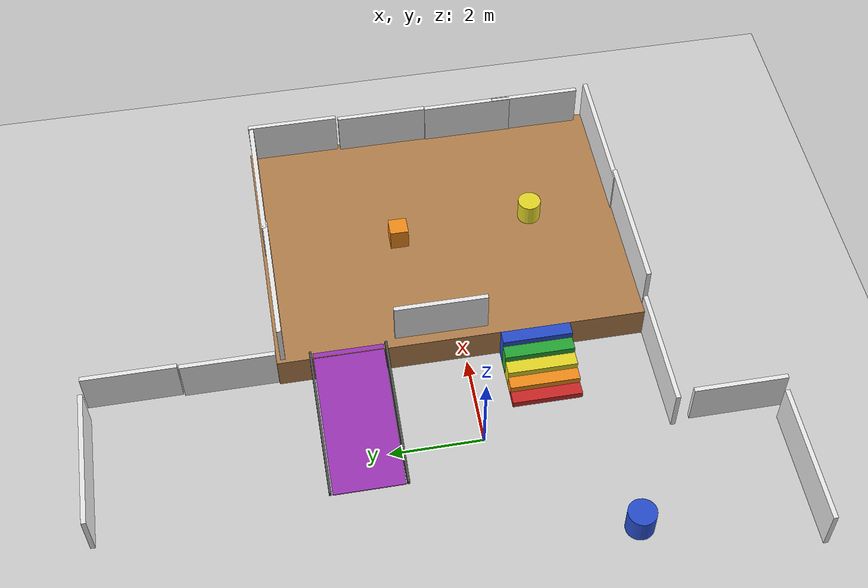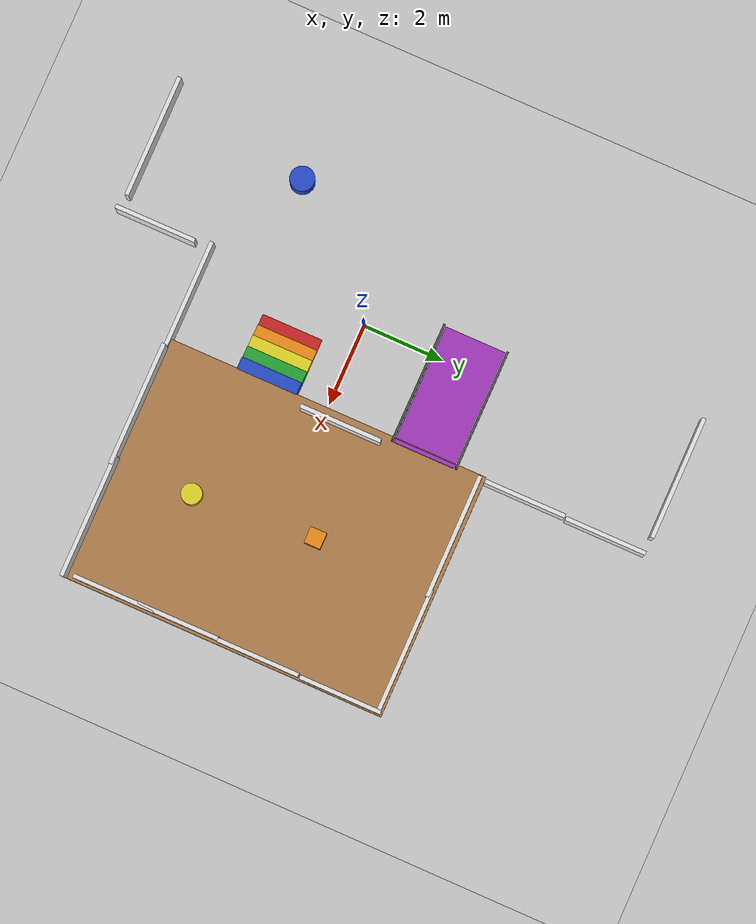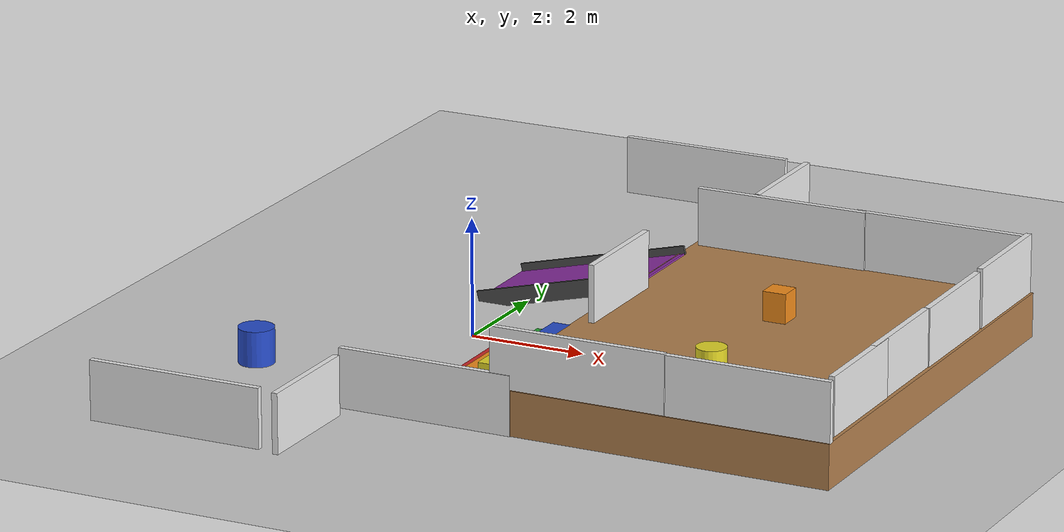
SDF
<sdf version="1.7">
 <world name="two_floor_test">
  <model name="ground_plane">
   <static>1</static>
   <link name="link">
    <collision name="collision">
     <geometry><plane><normal>0 0 1</normal><size>20 20</size></plane></geometry>
     <surface><friction><ode><mu>100</mu><mu2>50</mu2></ode></friction></surface>
    </collision>
    <visual name="visual">
     <cast_shadows>0</cast_shadows>
     <geometry><plane><normal>0 0 1</normal><size>20 20</size></plane></geometry>
     <material>
      <script><uri>file://media/materials/scripts/gazebo.material</uri><name>Gazebo/Grey</name></script>
     </material>
    </visual>
   </link>
  </model>
  <model name="second_floor">
   <static>1</static>
   <pose>5.12928 0.016362 0.375 0 -0 0</pose>
   <link name="link">
    <collision name="collision">
     <geometry><box><size>6 8 0.75</size></box></geometry>
     <surface><friction><ode><mu>100</mu><mu2>50</mu2></ode></friction></surface>
    </collision>
    <visual name="visual">
     <geometry><box><size>6 8 0.75</size></box></geometry>
     <material>
      <script><uri>file://media/materials/scripts/gazebo.material</uri><name>Gazebo/Wood</name></script>
     </material>
    </visual>
   </link>
  </model>
  <model name="stair_step_1">
   <static>1</static>
   <pose>0.851875 -1.5007 0.075 0 -0 0</pose>
   <link name="link">
    <collision name="collision">
     <geometry><box><size>0.3 1.5 0.15</size></box></geometry>
     <surface><friction><ode><mu>100</mu><mu2>50</mu2></ode></friction></surface>
    </collision>
    <visual name="visual">
     <geometry><box><size>0.3 1.5 0.15</size></box></geometry>
     <material>
      <script><uri>file://media/materials/scripts/gazebo.material</uri><name>Gazebo/Red</name></script>
     </material>
    </visual>
   </link>
  </model>
  <model name="stair_step_2">
   <static>1</static>
   <pose>1.13089 -1.50072 0.15 0 -0 0</pose>
   <link name="link">
    <collision name="collision">
     <geometry><box><size>0.3 1.5 0.3</size></box></geometry>
     <surface><friction><ode><mu>100</mu><mu2>50</mu2></ode></friction></surface>
    </collision>
    <visual name="visual">
     <geometry><box><size>0.3 1.5 0.3</size></box></geometry>
     <material>
      <script><uri>file://media/materials/scripts/gazebo.material</uri><name>Gazebo/Orange</name></script>
     </material>
    </visual>
   </link>
  </model>
  <model name="stair_step_3">
   <static>1</static>
   <pose>1.40821 -1.49927 0.225 0 -0 0</pose>
   <link name="link">
    <collision name="collision">
     <geometry><box><size>0.3 1.5 0.45</size></box></geometry>
     <surface><friction><ode><mu>100</mu><mu2>50</mu2></ode></friction></surface>
    </collision>
    <visual name="visual">
     <geometry><box><size>0.3 1.5 0.45</size></box></geometry>
     <material>
      <script><uri>file://media/materials/scripts/gazebo.material</uri><name>Gazebo/Yellow</name></script>
     </material>
    </visual>
   </link>
  </model>
  <model name="stair_step_4">
   <static>1</static>
   <pose>1.70313 -1.49583 0.3 0 -0 0</pose>
   <link name="link">
    <collision name="collision">
     <geometry><box><size>0.3 1.5 0.6</size></box></geometry>
     <surface><friction><ode><mu>100</mu><mu2>50</mu2></ode></friction></surface>
    </collision>
    <visual name="visual">
     <geometry><box><size>0.3 1.5 0.6</size></box></geometry>
     <material>
      <script><uri>file://media/materials/scripts/gazebo.material</uri><name>Gazebo/Green</name></script>
     </material>
    </visual>
   </link>
  </model>
  <model name="stair_step_5">
   <static>1</static>
   <pose>1.99464 -1.5 0.375 0 -0 0</pose>
   <link name="link">
    <collision name="collision">
     <geometry><box><size>0.3 1.5 0.75</size></box></geometry>
     <surface><friction><ode><mu>100</mu><mu2>50</mu2></ode></friction></surface>
    </collision>
    <visual name="visual">
     <geometry><box><size>0.3 1.5 0.75</size></box></geometry>
     <material>
      <script><uri>file://media/materials/scripts/gazebo.material</uri><name>Gazebo/Blue</name></script>
     </material>
    </visual>
   </link>
  </model>
  <model name="ramp">
   <static>1</static>
   <pose>0.75 2.5 0.375 0 -0.245 0</pose>
   <link name="link">
    <collision name="collision">
     <geometry><box><size>3.09 1.5 0.05</size></box></geometry>
     <surface><friction><ode><mu>100</mu><mu2>50</mu2></ode></friction></surface>
    </collision>
    <visual name="visual">
     <geometry><box><size>3.09 1.5 0.05</size></box></geometry>
     <material>
      <script><uri>file://media/materials/scripts/gazebo.material</uri><name>Gazebo/Purple</name></script>
     </material>
    </visual>
   </link>
  </model>
  <model name="ramp_wall_left">
   <static>1</static>
   <pose>0.75 1.7 0.375 0 -0.245 0</pose>
   <link name="link">
    <collision name="collision"><geometry><box><size>3.09 0.05 0.3</size></box></geometry></collision>
    <visual name="visual">
     <geometry><box><size>3.09 0.05 0.3</size></box></geometry>
     <material>
      <script><uri>file://media/materials/scripts/gazebo.material</uri><name>Gazebo/DarkGrey</name></script>
     </material>
    </visual>
   </link>
  </model>
  <model name="ramp_wall_right">
   <static>1</static>
   <pose>0.75 3.3 0.375 0 -0.245 0</pose>
   <link name="link">
    <collision name="collision"><geometry><box><size>3.09 0.05 0.3</size></box></geometry></collision>
    <visual name="visual">
     <geometry><box><size>3.09 0.05 0.3</size></box></geometry>
     <material>
      <script><uri>file://media/materials/scripts/gazebo.material</uri><name>Gazebo/DarkGrey</name></script>
     </material>
    </visual>
   </link>
  </model>
  <model name="obstacle_cylinder">
   <static>1</static>
   <pose>-2.50786 -2.66536 0.3 0 -0 0</pose>
   <link name="link">
    <collision name="collision">
     <geometry><cylinder><radius>0.3</radius><length>0.6</length></cylinder></geometry>
    </collision>
    <visual name="visual">
     <geometry><cylinder><radius>0.3</radius><length>0.6</length></cylinder></geometry>
     <material>
      <script><uri>file://media/materials/scripts/gazebo.material</uri><name>Gazebo/Blue</name></script>
     </material>
    </visual>
   </link>
  </model>
  <model name="obstacle_2f_box">
   <static>1</static>
   <pose>5 1 1 0 -0 0</pose>
   <link name="link">
    <collision name="collision"><geometry><box><size>0.4 0.4 0.5</size></box></geometry></collision>
    <visual name="visual">
     <geometry><box><size>0.4 0.4 0.5</size></box></geometry>
     <material>
      <script><uri>file://media/materials/scripts/gazebo.material</uri><name>Gazebo/Orange</name></script>
     </material>
    </visual>
   </link>
  </model>
  <model name="obstacle_2f_cylinder">
   <static>1</static>
   <pose>5.22236 -1.99827 1 0 -0 0</pose>
   <link name="link">
    <collision name="collision">
     <geometry><cylinder><radius>0.25</radius><length>0.5</length></cylinder></geometry>
    </collision>
    <visual name="visual">
     <geometry><cylinder><radius>0.25</radius><length>0.5</length></cylinder></geometry>
     <material>
      <script><uri>file://media/materials/scripts/gazebo.material</uri><name>Gazebo/Yellow</name></script>
     </material>
    </visual>
   </link>
  </model>
  <model name="wall_stairs">
   <static>1</static>
   <pose>1.21103 -3.9499 0.5 0 -0 0</pose>
   <link name="link">
    <collision name="collision"><geometry><box><size>3 0.1 1</size></box></geometry></collision>
    <visual name="visual">
     <geometry><box><size>3 0.1 1</size></box></geometry>
     <material>
      <script><uri>file://media/materials/scripts/gazebo.material</uri><name>Gazebo/White</name></script>
     </material>
    </visual>
   </link>
  </model>
  <model name="wall_ramp">
   <static>1</static>
   <pose>2.22962 5.02219 0.5 0 -0 0</pose>
   <link name="link">
    <collision name="collision"><geometry><box><size>0.1 2 1</size></box></geometry></collision>
    <visual name="visual">
     <geometry><box><size>0.1 2 1</size></box></geometry>
     <material>
      <script><uri>file://media/materials/scripts/gazebo.material</uri><name>Gazebo/White</name></script>
     </material>
    </visual>
   </link>
  </model>
  <model name="wall_ramp_clone">
   <static>1</static>
   <pose>2.26766 7.05725 0.5 0 -0 0</pose>
   <link name="link">
    <collision name="collision"><geometry><box><size>0.1 2 1</size></box></geometry></collision>
    <visual name="visual">
     <geometry><box><size>0.1 2 1</size></box></geometry>
     <material>
      <script><uri>file://media/materials/scripts/gazebo.material</uri><name>Gazebo/White</name></script>
     </material>
    </visual>
   </link>
  </model>
  <model name="wall_stairs_clone">
   <static>1</static>
   <pose>-1.9839 -6.18957 0.5 0 -0 0</pose>
   <link name="link">
    <collision name="collision"><geometry><box><size>3 0.1 1</size></box></geometry></collision>
    <visual name="visual">
     <geometry><box><size>3 0.1 1</size></box></geometry>
     <material>
      <script><uri>file://media/materials/scripts/gazebo.material</uri><name>Gazebo/White</name></script>
     </material>
    </visual>
   </link>
  </model>
  <model name="wall_stairs_clone_1">
   <static>1</static>
   <pose>0.380784 8.04789 0.5 0 -0 0</pose>
   <link name="link">
    <collision name="collision"><geometry><box><size>3 0.1 1</size></box></geometry></collision>
    <visual name="visual">
     <geometry><box><size>3 0.1 1</size></box></geometry>
     <material>
      <script><uri>file://media/materials/scripts/gazebo.material</uri><name>Gazebo/White</name></script>
     </material>
    </visual>
   </link>
  </model>
  <model name="wall_ramp_clone_2_clone_0">
   <static>1</static>
   <pose>-0.152199 -5.31861 0.5 0 -0 0</pose>
   <link name="link">
    <collision name="collision"><geometry><box><size>0.1 2 1</size></box></geometry></collision>
    <visual name="visual">
     <geometry><box><size>0.1 2 1</size></box></geometry>
     <material>
      <script><uri>file://media/materials/scripts/gazebo.material</uri><name>Gazebo/White</name></script>
     </material>
    </visual>
   </link>
  </model>
  <model name="wall_ramp_clone_0">
   <static>1</static>
   <pose>8.04575 2.97356 1.26028 0 -0 0</pose>
   <link name="link">
    <collision name="collision"><geometry><box><size>0.1 2 1</size></box></geometry></collision>
    <visual name="visual">
     <geometry><box><size>0.1 2 1</size></box></geometry>
     <material>
      <script><uri>file://media/materials/scripts/gazebo.material</uri><name>Gazebo/White</name></script>
     </material>
    </visual>
   </link>
  </model>
  <model name="wall_ramp_clone_0_clone">
   <static>1</static>
   <pose>8.0258 0.921 1.2226 0 -0 0</pose>
   <link name="link">
    <collision name="collision"><geometry><box><size>0.1 2 1</size></box></geometry></collision>
    <visual name="visual">
     <geometry><box><size>0.1 2 1</size></box></geometry>
     <material>
      <script><uri>file://media/materials/scripts/gazebo.material</uri><name>Gazebo/White</name></script>
     </material>
    </visual>
   </link>
  </model>
  <model name="wall_ramp_clone_0_clone_0">
   <static>1</static>
   <pose>8.0082 -1.08373 1.2226 0 -0 0</pose>
   <link name="link">
    <collision name="collision"><geometry><box><size>0.1 2 1</size></box></geometry></collision>
    <visual name="visual">
     <geometry><box><size>0.1 2 1</size></box></geometry>
     <material>
      <script><uri>file://media/materials/scripts/gazebo.material</uri><name>Gazebo/White</name></script>
     </material>
    </visual>
   </link>
  </model>
  <model name="wall_ramp_clone_0_clone_1">
   <static>1</static>
   <pose>8.01786 -2.66714 1.2226 0 -0 0</pose>
   <link name="link">
    <collision name="collision"><geometry><box><size>0.1 2 1</size></box></geometry></collision>
    <visual name="visual">
     <geometry><box><size>0.1 2 1</size></box></geometry>
     <material>
      <script><uri>file://media/materials/scripts/gazebo.material</uri><name>Gazebo/White</name></script>
     </material>
    </visual>
   </link>
  </model>
  <model name="wall_ramp_clone_0_clone_2">
   <static>1</static>
   <pose>2.40032 0.485278 1.2226 0 -0 0</pose>
   <link name="link">
    <collision name="collision"><geometry><box><size>0.1 2 1</size></box></geometry></collision>
    <visual name="visual">
     <geometry><box><size>0.1 2 1</size></box></geometry>
     <material>
      <script><uri>file://media/materials/scripts/gazebo.material</uri><name>Gazebo/White</name></script>
     </material>
    </visual>
   </link>
  </model>
  <model name="wall_stairs_clone_4">
   <static>1</static>
   <pose>3.85826 -3.93843 1.26071 0 -0 0</pose>
   <link name="link">
    <collision name="collision"><geometry><box><size>3 0.1 1</size></box></geometry></collision>
    <visual name="visual">
     <geometry><box><size>3 0.1 1</size></box></geometry>
     <material>
      <script><uri>file://media/materials/scripts/gazebo.material</uri><name>Gazebo/White</name></script>
     </material>
    </visual>
   </link>
  </model>
  <model name="wall_stairs_clone_4_clone">
   <static>1</static>
   <pose>6.6341 -3.91373 1.23793 0 -0 0</pose>
   <link name="link">
    <collision name="collision"><geometry><box><size>3 0.1 1</size></box></geometry></collision>
    <visual name="visual">
     <geometry><box><size>3 0.1 1</size></box></geometry>
     <material>
      <script><uri>file://media/materials/scripts/gazebo.material</uri><name>Gazebo/White</name></script>
     </material>
    </visual>
   </link>
  </model>
  <model name="wall_stairs_clone_4_clone_0">
   <static>1</static>
   <pose>6.53102 3.91083 1.23793 0 -0 0</pose>
   <link name="link">
    <collision name="collision"><geometry><box><size>3 0.1 1</size></box></geometry></collision>
    <visual name="visual">
     <geometry><box><size>3 0.1 1</size></box></geometry>
     <material>
      <script><uri>file://media/materials/scripts/gazebo.material</uri><name>Gazebo/White</name></script>
     </material>
    </visual>
   </link>
  </model>
  <model name="wall_stairs_clone_4_clone_1">
   <static>1</static>
   <pose>3.71575 3.88105 1.23793 0 -0 0</pose>
   <link name="link">
    <collision name="collision"><geometry><box><size>3 0.1 1</size></box></geometry></collision>
    <visual name="visual">
     <geometry><box><size>3 0.1 1</size></box></geometry>
     <material>
      <script><uri>file://media/materials/scripts/gazebo.material</uri><name>Gazebo/White</name></script>
     </material>
    </visual>
   </link>
  </model>
 </world>
</sdf>
